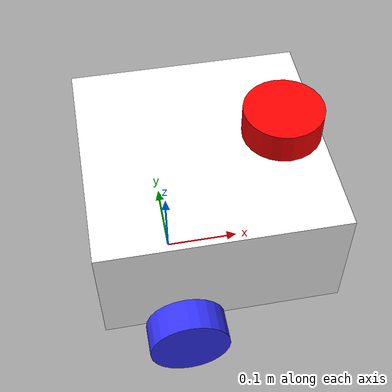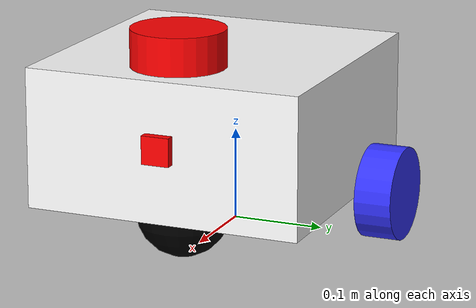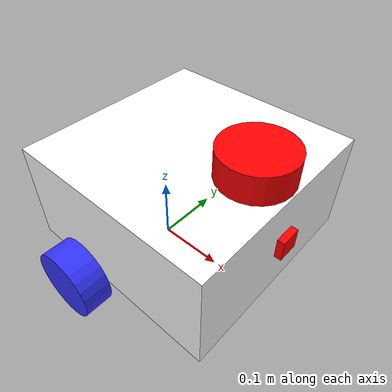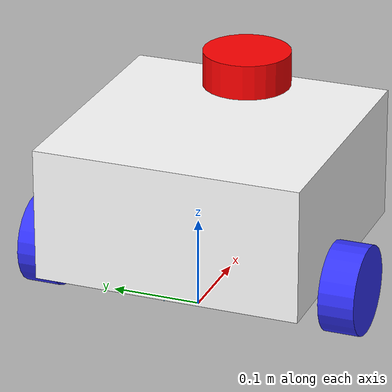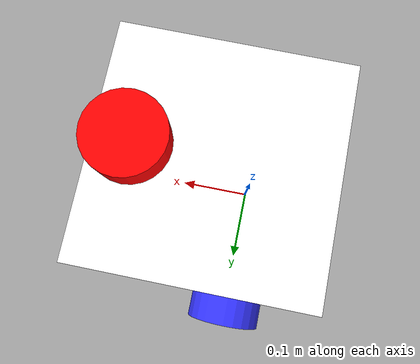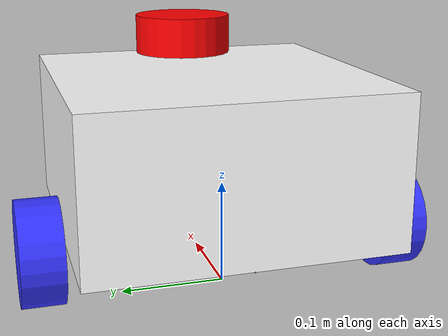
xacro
<?xml version="1.0"?>
<robot name="my_robot" xmlns:xacro="http://www.ros.org/wiki/xacro">
      <xacro:include filename="robot_core.urdf.xacro" />
      <xacro:include filename="gazebo_control.urdf.xacro" />
      <xacro:include filename="lidar.urdf.xacro" />
      <xacro:include filename="camera.urdf.xacro" />
      <xacro:include filename="imu.urdf.xacro" />
      <xacro:include filename="gps.urdf.xacro" />
</robot>

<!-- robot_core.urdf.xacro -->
<robot name="my_robot" xmlns:xacro="http://www.ros.org/wiki/xacro">
    <xacro:include filename="inertia.urdf.xacro" />
    <material name="white">
        <color rgba="1 1 1 1"/>
    </material>

    <material name="orange">
        <color rgba="1 0.3 0.1 1"/>
    </material>

    <material name="blue">
        <color rgba="0.2 0.2 1 1"/>
    </material>

    <material name="black">
        <color rgba="0 0 0 1"/>
    </material>

<!-- BASE FOOTPRINT -->
    <link name="base_footprint"/>

    <joint name="base_footprint_joint" type="fixed">
        <parent link="base_footprint"/>
        <child link="base_link"/>
        <origin xyz="0 0 0.05" rpy="0 0 0"/> <!-- 0.05 επειδή η ακτίνα των τροχών είναι 0.05 -->
    </joint>

    <!-- BASE LINK -->
    <link name="base_link"/>
    <joint name="chassis_joint" type="fixed">
        <parent link="base_link"/>
        <child link="chassis"/>
        <origin xyz="-0.1 0 0"/>
    </joint>
    <link name="chassis">
        <visual>
            <origin xyz="0.15 0 0.075" rpy="0 0 0"/>
            <geometry>
                <box size="0.3 0.3 0.15"/>
            </geometry>
            <material name="white"/>
        </visual>
        <collision>
            <origin xyz="0.15 0 0.075" rpy="0 0 0"/>
            <geometry>
                <box size="0.3 0.3 0.15"/>
            </geometry>
        </collision>
        <xacro:inertial_box mass="0.5" x="0.3" y="0.3" z="0.15">
            <origin xyz="0.15 0 0.075" rpy="0 0 0"/>
        </xacro:inertial_box>
    </link><!-- LEFT WHEEL -->
    <joint name="left_wheel_joint" type="continuous">
        <parent link="base_link"/>
        <child link="left_wheel"/>
        <origin xyz="0 0.175 0" rpy="-${pi/2} 0 0"/>
        <axis xyz="0 0 1"/>
    </joint>
    <link name="left_wheel">
        <visual>
            <geometry>
                <cylinder length="0.04" radius="0.05" />
            </geometry>
            <material name="blue"/>
        </visual>
        <collision>
            <geometry>
                <cylinder length="0.04" radius="0.05" />
            </geometry>
        </collision>
        <xacro:inertial_cylinder mass="0.1" length="0.05" radius="0.05">
            <origin xyz="0 0 0" rpy="0 0 0"/>
        </xacro:inertial_cylinder>

    </link><!-- RIGHT WHEEL -->
    <joint name="right_wheel_joint" type="continuous">
        <parent link="base_link"/>
        <child link="right_wheel"/>
        <origin xyz="0 -0.175 0" rpy="${pi/2} 0 0"/>
        <axis xyz="0 0 -1"/>
    </joint>
    <link name="right_wheel">
        <visual>
            <geometry>
                <cylinder length="0.04" radius="0.05" />
            </geometry>
            <material name="blue"/>
        </visual>
        <collision>
            <geometry>
                <cylinder length="0.04" radius="0.05" />
            </geometry>
        </collision>
        <xacro:inertial_cylinder mass="0.1" length="0.05" radius="0.05">
            <origin xyz="0 0 0" rpy="0 0 0"/>
        </xacro:inertial_cylinder>
    </link>
    <!-- CASTER WHEEL -->

    <joint name="caster_wheel_joint" type="fixed">
        <parent link="chassis"/>
        <child link="caster_wheel"/>
        <origin xyz="0.24 0 0" rpy="0 0 0"/>
    </joint>

    <link name="caster_wheel">
        <visual>
            <geometry>
                <sphere radius="0.05" />
            </geometry>
            <material name="black"/>
        </visual>
        <collision>
            <geometry>
                <sphere radius="0.05" />
            </geometry>
        </collision>
         <xacro:inertial_sphere mass="0.1" radius="0.05">
            <origin xyz="0 0 0" rpy="0 0 0"/>
        </xacro:inertial_sphere>
    </link>
    <gazebo reference="caster_wheel">
        <mu1 value="0.00" />
        <mu2 value="0.001" />
    </gazebo>
</robot>

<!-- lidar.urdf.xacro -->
<robot xmlns:xacro="http://www.ros.org/wiki/xacro" >

    <joint name="laser_joint" type="fixed">
        <parent link="chassis"/>
        <child link="laser_frame"/>
        <origin xyz="0.25 0 0.175" rpy="0 0 0"/>
    </joint>

    <link name="laser_frame">
        <visual>
            <geometry>
                <cylinder radius="0.05" length="0.04"/>
            </geometry>
            <material name="red"/>
        </visual>
        <collision>
            <geometry>
                <cylinder radius="0.05" length="0.04"/>
            </geometry>
        </collision>
        <xacro:inertial_cylinder mass="0.1" length="0.04" radius="0.05">
            <origin xyz="0 0 0" rpy="0 0 0"/>
        </xacro:inertial_cylinder>
    </link>
    <gazebo reference="laser_frame">
        <material>Gazebo/Red</material>

        <sensor name="laser" type="ray">
            <pose> 0 0 0 0 0 0 </pose>
            <always_on>true</always_on>
            <visualize>true</visualize>
            <update_rate>10</update_rate>
            <ray>
                <scan>
                    <horizontal>
                        <samples>360</samples>
                        <resolution>1</resolution>
                        <min_angle>-3.14</min_angle>
                        <max_angle>3.14</max_angle>
                    </horizontal>
                </scan>
                <range>
                    <min>0.3</min>
                    <max>12</max>
                    <resolution>0.01</resolution>
                </range>
            </ray>
            <plugin name="laser_controller" filename="libgazebo_ros_laser.so">
                <topicName>scan</topicName>
                <frameName>laser_frame</frameName>
            </plugin>
        </sensor>
    </gazebo>
    <material name="red">
        <color rgba="1 0 0 1"/>
    </material>
</robot>

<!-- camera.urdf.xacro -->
<robot xmlns:xacro="http://www.ros.org/wiki/xacro" >

    <joint name="camera_joint" type="fixed">
        <parent link="chassis"/>
        <child link="camera_link"/>
        <origin xyz="0.305 0 0.08" rpy="0 0 0"/>
    </joint>

    <link name="camera_link">
        <visual>
            <geometry>
                <box size="0.010 0.03 0.03"/>
            </geometry>
            <material name="red"/>
        </visual>
    </link>

    <joint name="camera_optical_joint" type="fixed">
        <parent link="camera_link"/>
        <child link="camera_link_optical"/>
        <origin xyz="0 0 0" rpy="${-pi/2} 0 ${-pi/2}"/>
    </joint>

    <link name="camera_link_optical"></link>

    <gazebo reference="camera_link">
        <material>Gazebo/Red</material>

        <sensor name="camera" type="camera">
            <pose> 0 0 0 0 0 0 </pose>
            <visualize>true</visualize>
            <update_rate>10</update_rate>
            <camera>
                <horizontal_fov>1.089</horizontal_fov>
                <image>
                    <format>R8G8B8</format>
                    <width>640</width>
                    <height>480</height>
                </image>
                <clip>
                    <near>0.05</near>
                    <far>8.0</far>
                </clip>
            </camera>
            <plugin name="camera_controller" filename="libgazebo_ros_camera.so">
                <frameName>camera_link_optical</frameName>
                <cameraName>camera</cameraName>
                <imageTopicName>image_raw</imageTopicName>
                <cameraInfoTopicName>camera_info</cameraInfoTopicName>
                <updateRate>10.0</updateRate>
            </plugin>
        </sensor>
    </gazebo>

</robot>

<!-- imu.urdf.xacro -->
<robot xmlns:xacro="http://www.ros.org/wiki/xacro" >
    <joint name="imu_joint" type="fixed">
        <parent link="chassis"/>
        <child link="imu_frame"/>
    </joint>
            <link name="imu_frame">
            <inertial>
                <origin xyz="0.0 0 0.01" rpy="0 0 0" />
                <mass value="0.005" />
                <inertia  ixx="8.333333333333334e-10" ixy = "0" ixz = "0"
                    iyy="8.333333333333334e-10" iyz = "0"
                    izz="8.333333333333334e-10"
                    />
            </inertial>
            <visual>
                <origin rpy="0 0 0" xyz="0 0 0"/>
                <geometry>
                    <box size="0.001 0.001 0.001"/>
                </geometry>
            </visual>
        </link>
  <gazebo>
    <plugin name="imu_plugin" filename="libgazebo_ros_imu.so">
      <alwaysOn>true</alwaysOn>
      <bodyName>base_footprint</bodyName>
      <topicName>imu</topicName>
      <serviceName>imu_service</serviceName>
      <gaussianNoise>0.0</gaussianNoise>
      <updateRate>100.0</updateRate>
    </plugin>
  </gazebo>
</robot>

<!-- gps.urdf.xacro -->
<robot name="sensor_gps" xmlns:xacro="http://wiki.ros.org/xacro">

    <joint name="gps_joint" type="fixed">
      <parent link="chassis"/>
      <child link="gps_frame"/>
    </joint>

    <link name="gps_frame">
      <inertial>
        <origin xyz="0.0 0 0.05" rpy="0 0 0" />
        <mass value="0.005" />
        <inertia ixx="1e-9" ixy ="0" ixz ="0"
                 iyy="1e-9" iyz ="0"
                 izz="1e-9"/>
      </inertial>
      <visual>
        <origin xyz="0 0 0" rpy="0 0 0"/>
        <geometry>
          <box size="0.001 0.001 0.001"/>
        </geometry>
      </visual>
    </link>

    <gazebo>
      <plugin name="gps_sensor" filename="libhector_gazebo_ros_gps.so">
        <alwaysOn>true</alwaysOn>
        <updateRate>5</updateRate>
        <!-- IMPORTANT: The original parent frame MUST be set as bodyName! -->
        <bodyName>base_footprint</bodyName>
        <topicName>gps_data</topicName>
        <frameId>base_footprint</frameId>
        <velocityTopicName>gps_velocity</velocityTopicName>
        <referenceLatitude> 49.9</referenceLatitude>
        <referenceLongitude>8.9</referenceLongitude>
        <referenceHeading>90</referenceHeading>
        <referenceAltitude>0</referenceAltitude>
        <gaussianNoise>0 0 0</gaussianNoise>
        <velocityDrift>0 0 0</velocityDrift>
        <velocityGaussianNoise>0.1 0.1 0.1</velocityGaussianNoise>
      </plugin>
    </gazebo>
</robot>
